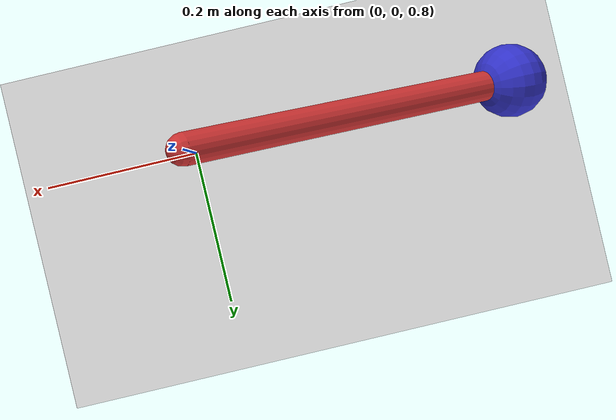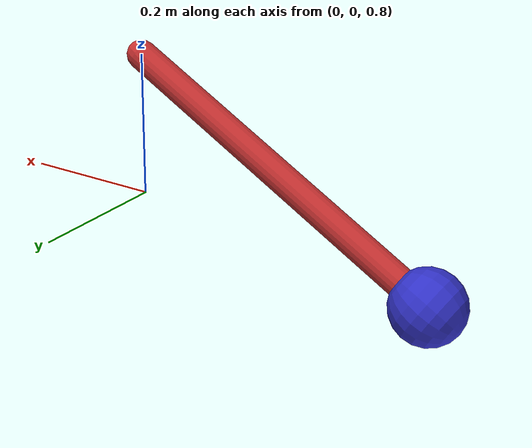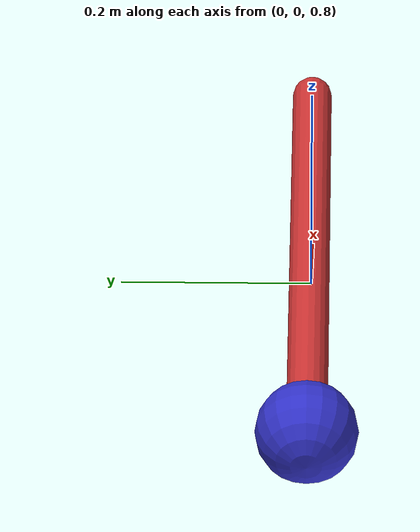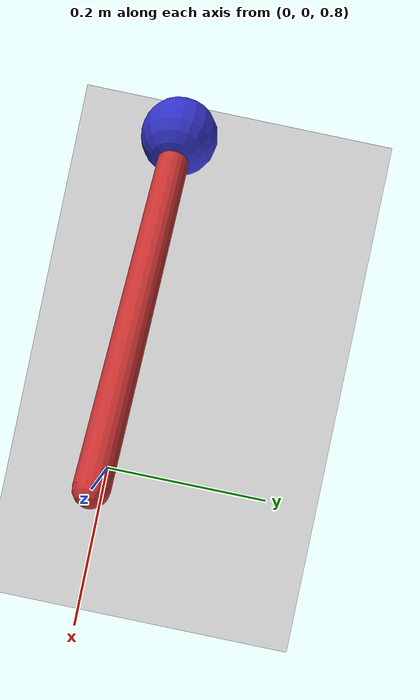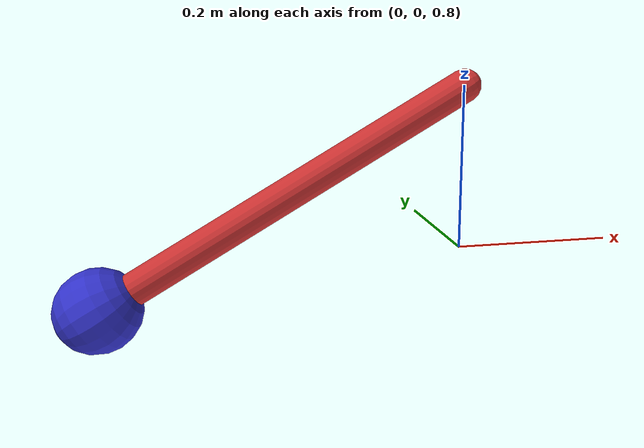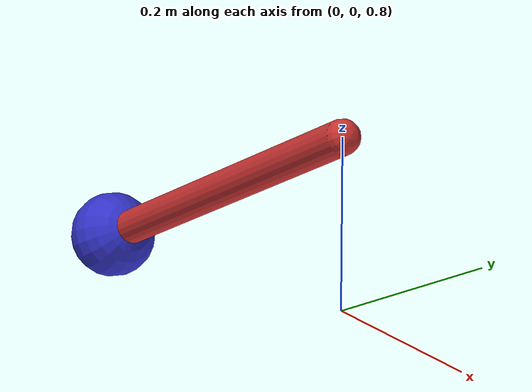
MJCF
<mujoco model="pendulum">
  <option gravity="0 0 -9.81" timestep="0.002"/>

  <worldbody>
    <light diffuse=".5 .5 .5" pos="0 0 3" dir="0 0 -1"/>
    <geom type="plane" size="1 1 0.1" rgba=".9 .9 .9 1"/>

    <body name="pole" pos="0 0 1" euler="0 60 0">
      <joint name="hinge" type="hinge" axis="0 1 0" damping="0.1"/>
      <geom type="capsule" fromto="0 0 0 0 0 -0.5" size="0.02" rgba="0.8 0.2 0.2 1"/>
      <body name="bob" pos="0 0 -0.5">
        <geom type="sphere" size="0.05" rgba="0.2 0.2 0.8 1"/>
      </body>
    </body>
  </worldbody>
</mujoco>
